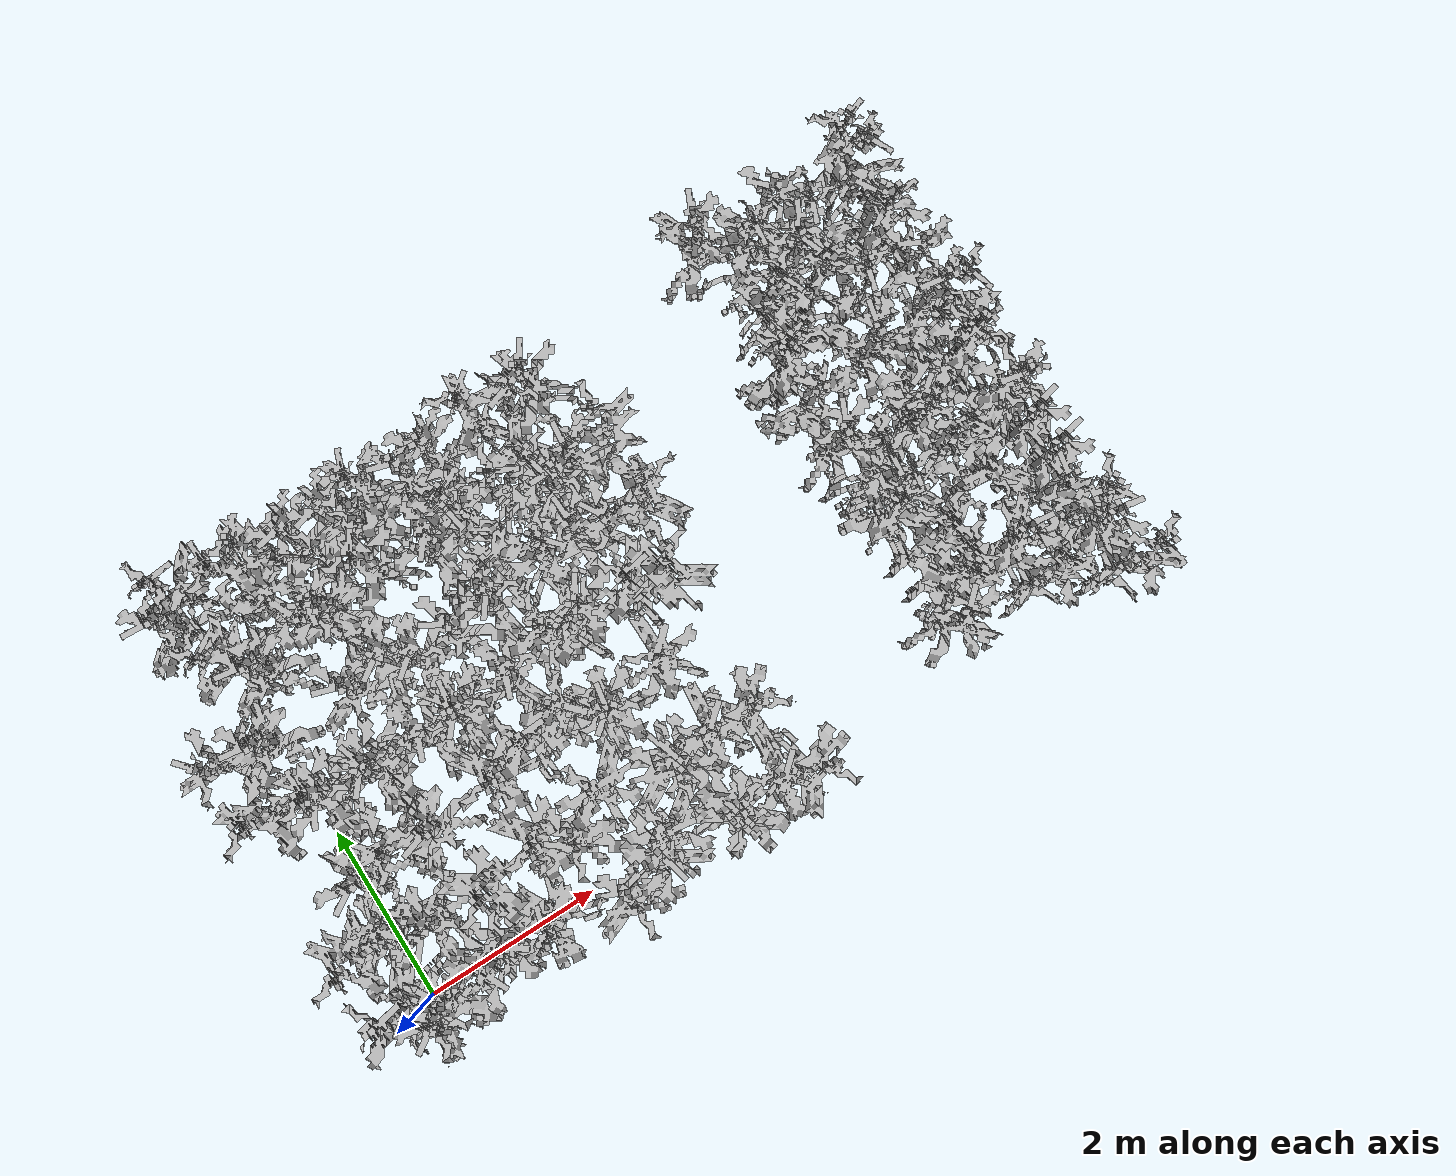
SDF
<?xml version="1.0" ?>
<sdf version="1.5">
  <model name="env_5_plot">
    <static>true</static>

    <include>
      <uri>model://corn_variant_5</uri>
      <name>plant_0_0</name>
      <pose>0.037539185295967906 0.032632315926210805 0 0.0 0.0 3.3335788713091694</pose>
    </include>

    <include>
      <uri>model://corn_variant_5</uri>
      <name>plant_0_1</name>
      <pose>0.3017244429245676 0.05868512494723494 0 0.0 0.0 0.5934119456780721</pose>
    </include>

    <include>
      <uri>model://corn_variant_5</uri>
      <name>plant_0_2</name>
      <pose>0.5483026192608199 0.018740489985020477 0 0.0 0.0 5.567600313861911</pose>
    </include>

    <include>
      <uri>model://corn_variant_5</uri>
      <name>plant_0_3</name>
      <pose>0.8865180281246434 3.4145567611072115e-18 0 0.0 0.0 2.007128639793479</pose>
    </include>

    <include>
      <uri>model://corn_variant_5</uri>
      <name>plant_0_4</name>
      <pose>1.1853940249476036 0.044862044133111414 0 0.0 0.0 2.530727415391778</pose>
    </include>

    <include>
      <uri>model://corn_variant_5</uri>
      <name>plant_0_6</name>
      <pose>1.820752985678364 0.028063273975068876 0 0.0 0.0 4.4505895925855405</pose>
    </include>

    <include>
      <uri>model://corn_variant_5</uri>
      <name>plant_0_8</name>
      <pose>2.522340610276295 -0.028903069994514568 0 0.0 0.0 5.8817595792208905</pose>
    </include>

    <include>
      <uri>model://corn_variant_5</uri>
      <name>plant_0_9</name>
      <pose>2.767490621179412 -0.0069652235404114035 0 0.0 0.0 1.8151424220741028</pose>
    </include>

    <include>
      <uri>model://corn_variant_5</uri>
      <name>plant_0_10</name>
      <pose>3.0613852154200996 0.06886096374410076 0 0.0 0.0 2.9845130209103035</pose>
    </include>

    <include>
      <uri>model://corn_variant_5</uri>
      <name>plant_0_12</name>
      <pose>3.5709327401387103 0.007582402736718247 0 0.0 0.0 1.6231562043547265</pose>
    </include>

    <include>
      <uri>model://corn_variant_5</uri>
      <name>plant_0_13</name>
      <pose>3.8744680041919257 -0.01709224852827004 0 0.0 0.0 4.991641660703783</pose>
    </include>

    <include>
      <uri>model://corn_variant_5</uri>
      <name>plant_0_14</name>
      <pose>4.331674495605819 -0.046843463029322324 0 0.0 0.0 3.857177646907468</pose>
    </include>

    <include>
      <uri>model://corn_variant_5</uri>
      <name>plant_0_15</name>
      <pose>4.528760970417941 0.08486137370559742 0 0.0 0.0 0.2617993877991494</pose>
    </include>

    <include>
      <uri>model://corn_variant_5</uri>
      <name>plant_0_17</name>
      <pose>0.07075842827867716 0.7724766200180556 0 0.0 0.0 4.694935687864747</pose>
    </include>

    <include>
      <uri>model://corn_variant_5</uri>
      <name>plant_0_18</name>
      <pose>0.3050396865052746 0.7737316306905889 0 0.0 0.0 2.2863813201125716</pose>
    </include>

    <include>
      <uri>model://corn_variant_5</uri>
      <name>plant_0_19</name>
      <pose>0.6096 0.7486373212492919 0 0.0 0.0 0.8901179185171081</pose>
    </include>

    <include>
      <uri>model://corn_variant_5</uri>
      <name>plant_0_22</name>
      <pose>1.4691169084858646 0.6968642254315192 0 0.0 0.0 4.939281783143953</pose>
    </include>

    <include>
      <uri>model://corn_variant_5</uri>
      <name>plant_0_24</name>
      <pose>2.1099721259648283 0.7891779944610018 0 0.0 0.0 4.642575810304916</pose>
    </include>

    <include>
      <uri>model://corn_variant_5</uri>
      <name>plant_0_25</name>
      <pose>2.367659356444619 0.7104668681247159 0 0.0 0.0 5.619960191421741</pose>
    </include>

    <include>
      <uri>model://corn_variant_5</uri>
      <name>plant_0_26</name>
      <pose>2.721309434619109 0.7468468213343744 0 0.0 0.0 3.141592653589793</pose>
    </include>

    <include>
      <uri>model://corn_variant_5</uri>
      <name>plant_0_28</name>
      <pose>3.4222756749884473 0.8086473913491184 0 0.0 0.0 6.003932626860494</pose>
    </include>

    <include>
      <uri>model://corn_variant_5</uri>
      <name>plant_0_29</name>
      <pose>3.6563895098884687 0.7571482640069421 0 0.0 0.0 5.026548245743669</pose>
    </include>

    <include>
      <uri>model://corn_variant_5</uri>
      <name>plant_0_30</name>
      <pose>3.9982323298923257 0.6865328363690286 0 0.0 0.0 3.822271061867582</pose>
    </include>

    <include>
      <uri>model://corn_variant_5</uri>
      <name>plant_0_31</name>
      <pose>4.231717295674401 0.8435920129312856 0 0.0 0.0 0.7853981633974483</pose>
    </include>

    <include>
      <uri>model://corn_variant_5</uri>
      <name>plant_0_35</name>
      <pose>0.309706383777013 1.4733188765932133 0 0.0 0.0 0.5585053606381855</pose>
    </include>

    <include>
      <uri>model://corn_variant_5</uri>
      <name>plant_0_37</name>
      <pose>0.9030475543196718 1.5691728445784636 0 0.0 0.0 5.3930673886624785</pose>
    </include>

    <include>
      <uri>model://corn_variant_5</uri>
      <name>plant_0_38</name>
      <pose>1.1453119488876138 1.5411870577191877 0 0.0 0.0 0.3141592653589793</pose>
    </include>

    <include>
      <uri>model://corn_variant_5</uri>
      <name>plant_0_41</name>
      <pose>2.0840058451249113 1.487793179245904 0 0.0 0.0 4.572762640225143</pose>
    </include>

    <include>
      <uri>model://corn_variant_5</uri>
      <name>plant_0_42</name>
      <pose>2.4064715298536905 1.5037316318970322 0 0.0 0.0 3.193952531149623</pose>
    </include>

    <include>
      <uri>model://corn_variant_5</uri>
      <name>plant_0_43</name>
      <pose>2.7341164714966526 1.5939794029196448 0 0.0 0.0 2.3387411976724017</pose>
    </include>

    <include>
      <uri>model://corn_variant_5</uri>
      <name>plant_0_44</name>
      <pose>3.083865351546774 1.5796899687065844 0 0.0 0.0 0.6981317007977318</pose>
    </include>

    <include>
      <uri>model://corn_variant_5</uri>
      <name>plant_0_45</name>
      <pose>3.348148491523348 1.4312439309528728 0 0.0 0.0 4.537856055185257</pose>
    </include>

    <include>
      <uri>model://corn_variant_5</uri>
      <name>plant_0_47</name>
      <pose>3.9731427897473592 1.522480168436615 0 0.0 0.0 3.9269908169872414</pose>
    </include>

    <include>
      <uri>model://corn_variant_5</uri>
      <name>plant_0_51</name>
      <pose>0.013791990391774683 2.3781351108450477 0 0.0 0.0 4.904375198104066</pose>
    </include>

    <include>
      <uri>model://corn_variant_5</uri>
      <name>plant_0_52</name>
      <pose>0.3834508894138793 2.239925370218257 0 0.0 0.0 1.0821041362364843</pose>
    </include>

    <include>
      <uri>model://corn_variant_5</uri>
      <name>plant_0_53</name>
      <pose>0.6128025320919299 2.277116427152433 0 0.0 0.0 4.6774823953448035</pose>
    </include>

    <include>
      <uri>model://corn_variant_5</uri>
      <name>plant_0_54</name>
      <pose>0.8897125919669634 2.282594751142004 0 0.0 0.0 0.8901179185171081</pose>
    </include>

    <include>
      <uri>model://corn_variant_5</uri>
      <name>plant_0_55</name>
      <pose>1.209303068617902 2.2777151133541214 0 0.0 0.0 5.044001538263612</pose>
    </include>

    <include>
      <uri>model://corn_variant_5</uri>
      <name>plant_0_56</name>
      <pose>1.4738321122682474 2.2393748455357074 0 0.0 0.0 1.2042771838760873</pose>
    </include>

    <include>
      <uri>model://corn_variant_5</uri>
      <name>plant_0_57</name>
      <pose>1.8830229983672304 2.2847438976595176 0 0.0 0.0 0.8726646259971648</pose>
    </include>

    <include>
      <uri>model://corn_variant_5</uri>
      <name>plant_0_58</name>
      <pose>2.1642669236774403 2.226883330078836 0 0.0 0.0 4.590215932745087</pose>
    </include>

    <include>
      <uri>model://corn_variant_5</uri>
      <name>plant_0_59</name>
      <pose>2.437584789846096 2.291658048340069 0 0.0 0.0 1.2042771838760873</pose>
    </include>

    <include>
      <uri>model://corn_variant_5</uri>
      <name>plant_0_61</name>
      <pose>3.0464036767895233 2.2900787880880586 0 0.0 0.0 2.722713633111154</pose>
    </include>

    <include>
      <uri>model://corn_variant_5</uri>
      <name>plant_0_62</name>
      <pose>3.370703949968232 2.2356861688094067 0 0.0 0.0 3.5604716740684323</pose>
    </include>

    <include>
      <uri>model://corn_variant_5</uri>
      <name>plant_0_63</name>
      <pose>3.615168847788967 2.366996754380917 0 0.0 0.0 4.171336912266447</pose>
    </include>

    <include>
      <uri>model://corn_variant_5</uri>
      <name>plant_0_64</name>
      <pose>4.041964159730839 2.2478539928322037 0 0.0 0.0 3.3335788713091694</pose>
    </include>

    <include>
      <uri>model://corn_variant_5</uri>
      <name>plant_0_65</name>
      <pose>4.262102333061125 2.273235167486421 0 0.0 0.0 1.7976891295541595</pose>
    </include>

    <include>
      <uri>model://corn_variant_5</uri>
      <name>plant_0_68</name>
      <pose>-0.08593945800339375 3.0782627119029793 0 0.0 0.0 5.445427266222308</pose>
    </include>

    <include>
      <uri>model://corn_variant_5</uri>
      <name>plant_0_69</name>
      <pose>0.26586744492356446 3.08031584097497 0 0.0 0.0 6.14355896702004</pose>
    </include>

    <include>
      <uri>model://corn_variant_5</uri>
      <name>plant_0_72</name>
      <pose>1.287069533522969 3.084074990416589 0 0.0 0.0 5.969026041820607</pose>
    </include>

    <include>
      <uri>model://corn_variant_5</uri>
      <name>plant_0_73</name>
      <pose>1.5699884076009532 3.1264916152742472 0 0.0 0.0 0.6108652381980153</pose>
    </include>

    <include>
      <uri>model://corn_variant_5</uri>
      <name>plant_0_74</name>
      <pose>1.8370556134802039 2.972763423841765 0 0.0 0.0 0.6806784082777885</pose>
    </include>

    <include>
      <uri>model://corn_variant_5</uri>
      <name>plant_0_76</name>
      <pose>2.436064860913725 3.0397132809726446 0 0.0 0.0 5.759586531581287</pose>
    </include>

    <include>
      <uri>model://corn_variant_5</uri>
      <name>plant_0_77</name>
      <pose>2.6919954536299495 3.04538181468835 0 0.0 0.0 0.9424777960769379</pose>
    </include>

    <include>
      <uri>model://corn_variant_5</uri>
      <name>plant_0_78</name>
      <pose>3.005728928881794 3.0392621557090465 0 0.0 0.0 3.3335788713091694</pose>
    </include>

    <include>
      <uri>model://corn_variant_5</uri>
      <name>plant_0_79</name>
      <pose>3.384231182156913 3.0085688178430874 0 0.0 0.0 2.2689280275926285</pose>
    </include>

    <include>
      <uri>model://corn_variant_5</uri>
      <name>plant_0_81</name>
      <pose>3.9828909316064536 3.128755975894961 0 0.0 0.0 4.747295565424577</pose>
    </include>

    <include>
      <uri>model://corn_variant_5</uri>
      <name>plant_0_82</name>
      <pose>4.252332331088265 3.055943622931951 0 0.0 0.0 5.235987755982989</pose>
    </include>

    <include>
      <uri>model://corn_variant_5</uri>
      <name>plant_0_83</name>
      <pose>4.48700532096485 3.0890717008206297 0 0.0 0.0 1.3788101090755203</pose>
    </include>

    <include>
      <uri>model://corn_variant_5</uri>
      <name>plant_0_86</name>
      <pose>0.3707907325713121 3.7340092674286876 0 0.0 0.0 3.6302848441482056</pose>
    </include>

    <include>
      <uri>model://corn_variant_5</uri>
      <name>plant_0_87</name>
      <pose>0.593313020244931 3.7233757846518363 0 0.0 0.0 6.126105674500097</pose>
    </include>

    <include>
      <uri>model://corn_variant_5</uri>
      <name>plant_0_88</name>
      <pose>0.9551381761829156 3.8799531725517094 0 0.0 0.0 2.0420352248333655</pose>
    </include>

    <include>
      <uri>model://corn_variant_5</uri>
      <name>plant_0_89</name>
      <pose>1.2290899870821277 3.7987856622787852 0 0.0 0.0 1.4311699866353502</pose>
    </include>

    <include>
      <uri>model://corn_variant_5</uri>
      <name>plant_0_90</name>
      <pose>1.5182386291695635 3.8113073269179254 0 0.0 0.0 5.672320068981571</pose>
    </include>

    <include>
      <uri>model://corn_variant_5</uri>
      <name>plant_0_92</name>
      <pose>2.076062991030793 3.833219007616737 0 0.0 0.0 4.171336912266447</pose>
    </include>

    <include>
      <uri>model://corn_variant_5</uri>
      <name>plant_0_93</name>
      <pose>2.4897958259711213 3.817697002089687 0 0.0 0.0 0.9250245035569946</pose>
    </include>

    <include>
      <uri>model://corn_variant_5</uri>
      <name>plant_0_94</name>
      <pose>2.7570193346899314 3.78410267396389 0 0.0 0.0 1.7278759594743862</pose>
    </include>

    <include>
      <uri>model://corn_variant_5</uri>
      <name>plant_0_95</name>
      <pose>3.0323867868684578 3.840673810793714 0 0.0 0.0 3.5255650890285457</pose>
    </include>

    <include>
      <uri>model://corn_variant_5</uri>
      <name>plant_0_96</name>
      <pose>3.3935376958375496 3.7459392516940326 0 0.0 0.0 2.652900463031381</pose>
    </include>

    <include>
      <uri>model://corn_variant_5</uri>
      <name>plant_0_97</name>
      <pose>3.652250916021205 3.76966383727945 0 0.0 0.0 1.8151424220741028</pose>
    </include>

    <include>
      <uri>model://corn_variant_5</uri>
      <name>plant_0_98</name>
      <pose>3.946295417747842 3.758046128883441 0 0.0 0.0 0.017453292519943295</pose>
    </include>

    <include>
      <uri>model://corn_variant_5</uri>
      <name>plant_0_99</name>
      <pose>4.315440521882856 3.7164449651152545 0 0.0 0.0 4.590215932745087</pose>
    </include>

    <include>
      <uri>model://corn_variant_5</uri>
      <name>plant_0_100</name>
      <pose>4.530034024205201 3.73778288228108 0 0.0 0.0 2.670353755551324</pose>
    </include>

    <include>
      <uri>model://corn_variant_5</uri>
      <name>plant_0_102</name>
      <pose>0.05876876677883476 4.536255876961361 0 0.0 0.0 6.230825429619756</pose>
    </include>

    <include>
      <uri>model://corn_variant_5</uri>
      <name>plant_0_103</name>
      <pose>0.28179497074065746 4.554688870508105 0 0.0 0.0 3.246312408709453</pose>
    </include>

    <include>
      <uri>model://corn_variant_5</uri>
      <name>plant_0_105</name>
      <pose>0.9304422184514201 4.572533554693376 0 0.0 0.0 4.747295565424577</pose>
    </include>

    <include>
      <uri>model://corn_variant_5</uri>
      <name>plant_0_106</name>
      <pose>1.2304525387050156 4.534726384268755 0 0.0 0.0 4.118977034706618</pose>
    </include>

    <include>
      <uri>model://corn_variant_5</uri>
      <name>plant_0_107</name>
      <pose>1.4770239582908797 4.644747022596876 0 0.0 0.0 0.20943951023931956</pose>
    </include>

    <include>
      <uri>model://corn_variant_5</uri>
      <name>plant_0_108</name>
      <pose>1.8475999254290925 4.6354023824629 0 0.0 0.0 0.3141592653589793</pose>
    </include>

    <include>
      <uri>model://corn_variant_5</uri>
      <name>plant_0_109</name>
      <pose>2.204766074867266 4.502370848867328 0 0.0 0.0 5.585053606381854</pose>
    </include>

    <include>
      <uri>model://corn_variant_5</uri>
      <name>plant_0_110</name>
      <pose>2.426296499835595 4.554611174534171 0 0.0 0.0 4.363323129985824</pose>
    </include>

    <include>
      <uri>model://corn_variant_5</uri>
      <name>plant_0_111</name>
      <pose>2.7672735137695166 4.601696548965512 0 0.0 0.0 5.98647933434055</pose>
    </include>

    <include>
      <uri>model://corn_variant_5</uri>
      <name>plant_0_112</name>
      <pose>3.051026489114085 4.64666730882892 0 0.0 0.0 6.161012259539984</pose>
    </include>

    <include>
      <uri>model://corn_variant_5</uri>
      <name>plant_0_114</name>
      <pose>3.6584313821133536 4.55904360428247 0 0.0 0.0 3.839724354387525</pose>
    </include>

    <include>
      <uri>model://corn_variant_5</uri>
      <name>plant_0_115</name>
      <pose>3.9491781169784708 4.654078586124297 0 0.0 0.0 0.3490658503988659</pose>
    </include>

    <include>
      <uri>model://corn_variant_5</uri>
      <name>plant_0_116</name>
      <pose>4.353674812218923 4.538439407773217 0 0.0 0.0 4.153883619746504</pose>
    </include>

    <include>
      <uri>model://corn_variant_5</uri>
      <name>plant_0_121</name>
      <pose>8.198233146503421 -0.053322691490127444 0 0.0 0.0 1.6755160819145565</pose>
    </include>

    <include>
      <uri>model://corn_variant_5</uri>
      <name>plant_0_122</name>
      <pose>6.58294729647546 0.3082466583421483 0 0.0 0.0 3.8746309394274117</pose>
    </include>

    <include>
      <uri>model://corn_variant_5</uri>
      <name>plant_0_123</name>
      <pose>7.401355319833699 0.2614307457893282 0 0.0 0.0 1.9722220547535925</pose>
    </include>

    <include>
      <uri>model://corn_variant_5</uri>
      <name>plant_0_124</name>
      <pose>8.154105128768347 0.3020006975337232 0 0.0 0.0 2.9845130209103035</pose>
    </include>

    <include>
      <uri>model://corn_variant_5</uri>
      <name>plant_0_125</name>
      <pose>6.607449904100188 0.6096374829415543 0 0.0 0.0 2.0943951023931953</pose>
    </include>

    <include>
      <uri>model://corn_variant_5</uri>
      <name>plant_0_126</name>
      <pose>7.3788527981294525 0.6191500053984251 0 0.0 0.0 3.036872898470133</pose>
    </include>

    <include>
      <uri>model://corn_variant_5</uri>
      <name>plant_0_127</name>
      <pose>8.106773093139404 0.5934285971589844 0 0.0 0.0 2.076941809873252</pose>
    </include>

    <include>
      <uri>model://corn_variant_5</uri>
      <name>plant_0_128</name>
      <pose>6.670635536237856 0.8594923800108017 0 0.0 0.0 1.7627825445142729</pose>
    </include>

    <include>
      <uri>model://corn_variant_5</uri>
      <name>plant_0_130</name>
      <pose>8.122408214918336 0.9247813648850876 0 0.0 0.0 4.50294947014537</pose>
    </include>

    <include>
      <uri>model://corn_variant_5</uri>
      <name>plant_0_131</name>
      <pose>6.664081549377617 1.1780704242266908 0 0.0 0.0 1.7976891295541595</pose>
    </include>

    <include>
      <uri>model://corn_variant_5</uri>
      <name>plant_0_133</name>
      <pose>8.147790640489859 1.1527392329408037 0 0.0 0.0 3.2986722862692828</pose>
    </include>

    <include>
      <uri>model://corn_variant_5</uri>
      <name>plant_0_134</name>
      <pose>6.5346909595741485 1.4711218095573921 0 0.0 0.0 2.949606435870417</pose>
    </include>

    <include>
      <uri>model://corn_variant_5</uri>
      <name>plant_0_135</name>
      <pose>7.367471544886585 1.577630900939355 0 0.0 0.0 6.19591884457987</pose>
    </include>

    <include>
      <uri>model://corn_variant_5</uri>
      <name>plant_0_136</name>
      <pose>8.14445837490966 1.5315630239987337 0 0.0 0.0 3.351032163829113</pose>
    </include>

    <include>
      <uri>model://corn_variant_5</uri>
      <name>plant_0_137</name>
      <pose>6.631048119111675 1.8250658374865893 0 0.0 0.0 1.361356816555577</pose>
    </include>

    <include>
      <uri>model://corn_variant_5</uri>
      <name>plant_0_138</name>
      <pose>7.362096673078647 1.8374015929434115 0 0.0 0.0 1.9722220547535925</pose>
    </include>

    <include>
      <uri>model://corn_variant_5</uri>
      <name>plant_0_139</name>
      <pose>8.117473890427293 1.8919227059855568 0 0.0 0.0 2.6878070480712677</pose>
    </include>

    <include>
      <uri>model://corn_variant_5</uri>
      <name>plant_0_140</name>
      <pose>6.533907070681965 2.0740286633787126 0 0.0 0.0 1.4311699866353502</pose>
    </include>

    <include>
      <uri>model://corn_variant_5</uri>
      <name>plant_0_141</name>
      <pose>7.332173023678099 2.1879549560834133 0 0.0 0.0 3.7699111843077517</pose>
    </include>

    <include>
      <uri>model://corn_variant_5</uri>
      <name>plant_0_142</name>
      <pose>8.213588641348736 2.155071403671561 0 0.0 0.0 6.09119908946021</pose>
    </include>

    <include>
      <uri>model://corn_variant_5</uri>
      <name>plant_0_143</name>
      <pose>6.637525356224238 2.4262574720332863 0 0.0 0.0 4.276056667386108</pose>
    </include>

    <include>
      <uri>model://corn_variant_5</uri>
      <name>plant_0_144</name>
      <pose>7.336584701268343 2.4283642561539676 0 0.0 0.0 6.09119908946021</pose>
    </include>

    <include>
      <uri>model://corn_variant_5</uri>
      <name>plant_0_145</name>
      <pose>8.101055244492613 2.4860562674283218 0 0.0 0.0 3.12413936106985</pose>
    </include>

    <include>
      <uri>model://corn_variant_5</uri>
      <name>plant_0_147</name>
      <pose>7.395714760787104 2.7168627750917227 0 0.0 0.0 0.4014257279586958</pose>
    </include>

    <include>
      <uri>model://corn_variant_5</uri>
      <name>plant_0_148</name>
      <pose>8.095631826389765 2.7708778450250886 0 0.0 0.0 0.12217304763960307</pose>
    </include>

    <include>
      <uri>model://corn_variant_5</uri>
      <name>plant_0_149</name>
      <pose>6.606244224698616 3.0500426038071113 0 0.0 0.0 5.480333851262195</pose>
    </include>

    <include>
      <uri>model://corn_variant_5</uri>
      <name>plant_0_150</name>
      <pose>7.430132675669813 3.0987419832102026 0 0.0 0.0 4.468042885105484</pose>
    </include>

    <include>
      <uri>model://corn_variant_5</uri>
      <name>plant_0_151</name>
      <pose>8.16478104394921 3.057302302888364 0 0.0 0.0 1.8151424220741028</pose>
    </include>

    <include>
      <uri>model://corn_variant_5</uri>
      <name>plant_0_152</name>
      <pose>6.535935603061346 3.30809938239344 0 0.0 0.0 3.5255650890285457</pose>
    </include>

    <include>
      <uri>model://corn_variant_5</uri>
      <name>plant_0_154</name>
      <pose>8.08647589939511 3.3310022286351324 0 0.0 0.0 6.126105674500097</pose>
    </include>

    <include>
      <uri>model://corn_variant_5</uri>
      <name>plant_0_155</name>
      <pose>6.622229779767853 3.673990680355925 0 0.0 0.0 0.22689280275926285</pose>
    </include>

    <include>
      <uri>model://corn_variant_5</uri>
      <name>plant_0_156</name>
      <pose>7.3565792482375585 3.708844226776382 0 0.0 0.0 1.2740903539558606</pose>
    </include>

    <include>
      <uri>model://corn_variant_5</uri>
      <name>plant_0_157</name>
      <pose>8.16967530250654 3.713606278002485 0 0.0 0.0 5.811946409141117</pose>
    </include>

    <include>
      <uri>model://corn_variant_5</uri>
      <name>plant_0_158</name>
      <pose>6.620091825492874 3.9693955357719397 0 0.0 0.0 1.9373154697137058</pose>
    </include>

    <include>
      <uri>model://corn_variant_5</uri>
      <name>plant_0_159</name>
      <pose>7.382919296410726 4.041871792141234 0 0.0 0.0 5.061454830783556</pose>
    </include>

    <include>
      <uri>model://corn_variant_5</uri>
      <name>plant_0_160</name>
      <pose>8.12637133109659 3.957987283508279 0 0.0 0.0 3.141592653589793</pose>
    </include>

    <include>
      <uri>model://corn_variant_5</uri>
      <name>plant_0_162</name>
      <pose>7.343863420762051 4.277711014066567 0 0.0 0.0 4.258603374866164</pose>
    </include>

    <include>
      <uri>model://corn_variant_5</uri>
      <name>plant_0_163</name>
      <pose>8.155149180780413 4.294877635893828 0 0.0 0.0 5.253441048502932</pose>
    </include>

    <include>
      <uri>model://corn_variant_5</uri>
      <name>plant_0_164</name>
      <pose>6.683930316328546 4.627550549091626 0 0.0 0.0 1.4311699866353502</pose>
    </include>

    <include>
      <uri>model://corn_variant_5</uri>
      <name>plant_0_165</name>
      <pose>7.281588177686252 4.562973294368367 0 0.0 0.0 1.1868238913561442</pose>
    </include>

    <include>
      <uri>model://corn_variant_5</uri>
      <name>plant_0_166</name>
      <pose>8.095592272783515 4.65090396727879 0 0.0 0.0 1.9896753472735358</pose>
    </include>

    <include>
      <uri>model://corn_variant_5</uri>
      <name>plant_0_167</name>
      <pose>6.529126306222244 4.9296445307331505 0 0.0 0.0 4.276056667386108</pose>
    </include>

    <include>
      <uri>model://corn_variant_5</uri>
      <name>plant_0_168</name>
      <pose>7.2985276354064075 4.936732026164321 0 0.0 0.0 5.550147021341968</pose>
    </include>

    <include>
      <uri>model://corn_variant_5</uri>
      <name>plant_0_169</name>
      <pose>8.213589391908064 4.843742455753773 0 0.0 0.0 3.5081117965086026</pose>
    </include>

  </model>
</sdf>

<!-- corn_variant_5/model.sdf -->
<sdf version="1.5">
     <model name="corn_variant_5">
          <static>true</static>
          <link name="link">
               <inertial>
                    <pose>0 0 0 0 0 0</pose>
                    <mass>4</mass>
                    <inertia>
                         <ixx>0.01</ixx>
                         <ixy>0</ixy>
                         <ixz>0</ixz>
                         <iyy>0.01</iyy>
                         <iyz>0</iyz>
                         <izz>0.01</izz>
                    </inertia>
               </inertial>

               <collision name='collision'>
                    <pose>0 0 1.125 0 0 0</pose>
                    <geometry>
                         <cylinder>
                              <radius>0.01</radius>
                              <length>2.25</length>
                         </cylinder>
                    </geometry>
                    <max_contacts>10</max_contacts>
               </collision>

               <visual name="stem">
                    <geometry>
                         <mesh>
                              <uri>model://corn_variant_5/meshes/corn_variant_5.dae</uri>
                              <submesh>
                                   <name>Stem</name>
                              </submesh>
                         </mesh>
                    </geometry>
                    <material>
                         <script>
                              <uri>model://corn_variant_5/materials/scripts/</uri>
                              <uri>model://corn_variant_5/materials/textures/</uri>
                              <name>Corn/Stem</name>
                         </script>
                    </material>
               </visual>

               <visual name="leavesm">
                    <geometry>
                         <mesh>
                              <uri>model://corn_variant_5/meshes/corn_variant_5.dae</uri>
                              <submesh>
                                   <name>LeavesMid</name>
                              </submesh>
                         </mesh>
                    </geometry>
                    <material>
                         <script>
                              <uri>model://corn_variant_5/materials/scripts/</uri>
                              <uri>model://corn_variant_5/materials/textures/</uri>
                              <name>Corn/LeavesMid</name>
                         </script>
                    </material>
               </visual>

               <visual name="leavest">
                    <geometry>
                         <mesh>
                              <uri>model://corn_variant_5/meshes/corn_variant_5.dae</uri>
                              <submesh>
                                   <name>LeavesTop</name>
                              </submesh>
                         </mesh>
                    </geometry>
                    <material>
                         <script>
                              <uri>model://corn_variant_5/materials/scripts/</uri>
                              <uri>model://corn_variant_5/materials/textures/</uri>
                              <name>Corn/LeavesTop</name>
                         </script>
                    </material>
               </visual>

               <visual name="ear">
                    <geometry>
                         <mesh>
                              <uri>model://corn_variant_5/meshes/corn_variant_5.dae</uri>
                              <submesh>
                                   <name>Ear</name>
                              </submesh>
                         </mesh>
                    </geometry>
                    <material>
                         <script>
                              <uri>model://corn_variant_5/materials/scripts/</uri>
                              <uri>model://corn_variant_5/materials/textures/</uri>
                              <name>Corn/Ear</name>
                         </script>
                    </material>
               </visual>

               <visual name="eart">
                    <geometry>
                         <mesh>
                              <uri>model://corn_variant_5/meshes/corn_variant_5.dae</uri>
                              <submesh>
                                   <name>EarTassel</name>
                              </submesh>
                         </mesh>
                    </geometry>
                    <material>
                         <script>
                              <uri>model://corn_variant_5/materials/scripts/</uri>
                              <uri>model://corn_variant_5/materials/textures/</uri>
                              <name>Corn/EarTassel</name>
                         </script>
                    </material>
               </visual>

               <visual name="flowert">
                    <geometry>
                         <mesh>
                              <uri>model://corn_variant_5/meshes/corn_variant_5.dae</uri>
                              <submesh>
                                   <name>FlowerTop</name>
                              </submesh>
                         </mesh>
                    </geometry>
                    <material>
                         <script>
                              <uri>model://corn_variant_5/materials/scripts/</uri>
                              <uri>model://corn_variant_5/materials/textures/</uri>
                              <name>Corn/FlowerTop</name>
                         </script>
                    </material>
               </visual>

          </link>
     </model>
</sdf>
